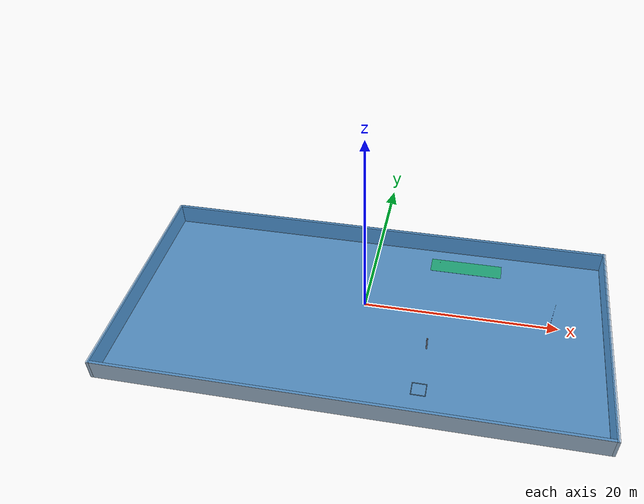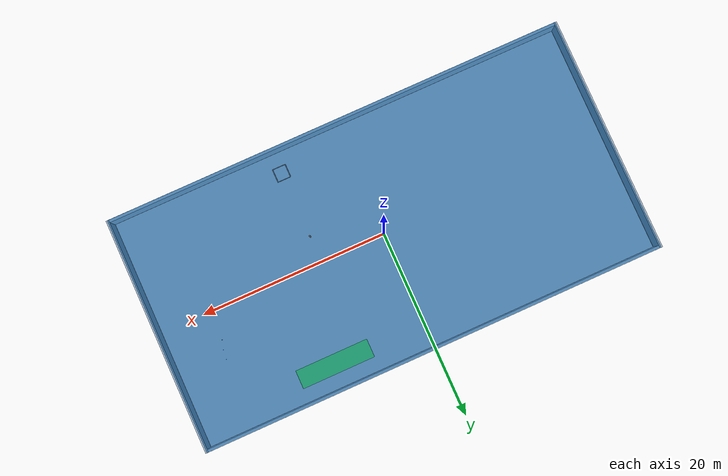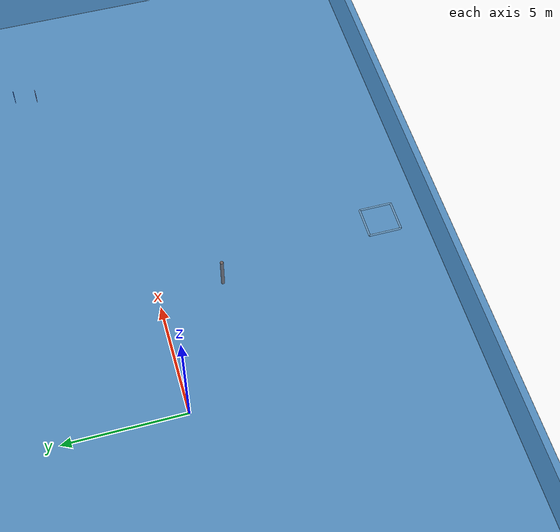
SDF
<sdf version="1.8">
 <world name="pool_world">
  <plugin filename="gz-sim-physics-system" name="gz::sim::systems::Physics"/>
  <plugin filename="gz-sim-user-commands-system" name="gz::sim::systems::UserCommands"/>
  <plugin filename="gz-sim-scene-broadcaster-system" name="gz::sim::systems::SceneBroadcaster"/>
  <plugin filename="gz-sim-imu-system" name="gz::sim::systems::Imu"/>
  <plugin filename="gz-sim-sensors-system" name="gz::sim::systems::Sensors">
   <render_engine>ogre2</render_engine>
  </plugin>
  <gravity>0 0 -9.81</gravity>
  <magnetic_field>6e-6 2e-5 -4e-5</magnetic_field>
  <atmosphere type="adiabatic"/>
  <scene><ambient>0.4 0.4 0.45 1</ambient><background>0.85 0.9 1 1</background><shadows>true</shadows></scene>
  <physics name="dart" type="dart">
   <max_step_size>0.001</max_step_size>
   <real_time_factor>1.0</real_time_factor>
   <real_time_update_rate>1000</real_time_update_rate>
  </physics>
  <include><uri>https://fuel.gazebosim.org/1.0/OpenRobotics/models/Sun</uri></include>
  <model name="pool_structure">
   <static>true</static>
   <pose>0 0 -2.2 0 0 0</pose>
   <include><uri>model://pool_ground25</uri></include>
   <link name="wall_x_pos">
    <pose>25.15 0 1.1 0 0 0</pose>
    <collision name="col"><geometry><box><size>0.3 25.6 2.2</size></box></geometry></collision>
    <visual name="vis">
     <geometry><box><size>0.3 25.6 2.2</size></box></geometry>
     <material>
      <ambient>0.7 0.8 0.9 1</ambient>
      <diffuse>0.7 0.8 0.9 1</diffuse>
      <specular>0.3 0.3 0.3 1</specular>
      <emissive>0 0 0 1</emissive>
     </material>
    </visual>
   </link>
   <link name="wall_x_neg">
    <pose>-25.15 0 1.1 0 0 0</pose>
    <collision name="col"><geometry><box><size>0.3 25.6 2.2</size></box></geometry></collision>
    <visual name="vis">
     <geometry><box><size>0.3 25.6 2.2</size></box></geometry>
     <material>
      <ambient>0.7 0.8 0.9 1</ambient>
      <diffuse>0.7 0.8 0.9 1</diffuse>
      <specular>0.3 0.3 0.3 1</specular>
      <emissive>0 0 0 1</emissive>
     </material>
    </visual>
   </link>
   <link name="wall_y_pos">
    <pose>0 12.65 1.1 0 0 0</pose>
    <collision name="col"><geometry><box><size>50 0.3 2.2</size></box></geometry></collision>
    <visual name="vis">
     <geometry><box><size>50 0.3 2.2</size></box></geometry>
     <material>
      <ambient>0.7 0.8 0.9 1</ambient>
      <diffuse>0.7 0.8 0.9 1</diffuse>
      <specular>0.3 0.3 0.3 1</specular>
      <emissive>0 0 0 1</emissive>
     </material>
    </visual>
   </link>
   <link name="wall_y_neg">
    <pose>0 -12.65 1.1 0 0 0</pose>
    <collision name="col"><geometry><box><size>50 0.3 2.2</size></box></geometry></collision>
    <visual name="vis">
     <geometry><box><size>50 0.3 2.2</size></box></geometry>
     <material>
      <ambient>0.7 0.8 0.9 1</ambient>
      <diffuse>0.7 0.8 0.9 1</diffuse>
      <specular>0.3 0.3 0.3 1</specular>
      <emissive>0 0 0 1</emissive>
     </material>
    </visual>
   </link>
  </model>
  <model name="water_surface">
   <static>true</static>
   <link name="surface">
    <visual name="visual">
     <geometry><plane><normal>0 0 1</normal><size>50.3 25.6</size></plane></geometry>
     <material>
      <ambient>0.1 0.35 0.55 0.6</ambient>
      <diffuse>0.1 0.4 0.65 0.6</diffuse>
      <specular>0.8 0.9 1 0.6</specular>
      <emissive>0 0 0 1</emissive>
     </material>
     <transparency>0.4</transparency>
    </visual>
   </link>
  </model>
  <plugin filename="gz-sim-buoyancy-system" name="gz::sim::systems::Buoyancy">
   <graded_buoyancy>
    <default_density>1000</default_density>
    <density_change><above_depth>0</above_depth><density>1</density></density_change>
   </graded_buoyancy>
  </plugin>
  <include><uri>model://starting_zone</uri><pose>7 -10 -0.2 0 0 0</pose><static>1</static></include>
  <include>
   <uri>model://orange_flare</uri>
   <plugin filename="gz-sim-label-system" name="gz::sim::systems::Label"><label>3</label></plugin>
   <pose>7 -3 -2.2 0 0 0</pose>
   <static>1</static>
  </include>
  <include>
   <uri>model://green_mat</uri>
   <plugin filename="gz-sim-label-system" name="gz::sim::systems::Label"><label>10</label></plugin>
   <pose>10 10 -2.2 0 0 0</pose>
   <static>1</static>
  </include>
  <include>
   <uri>model://golf_ball</uri>
   <plugin filename="gz-sim-label-system" name="gz::sim::systems::Label"><label>9</label></plugin>
   <pose>7 10 -2.0 0 0 0</pose>
   <static>1</static>
  </include>
  <include>
   <uri>model://yellow_flare</uri>
   <plugin filename="gz-sim-label-system" name="gz::sim::systems::Label"><label>5</label></plugin>
   <pose>20 5 -2.2 0 0 0</pose>
   <static>1</static>
  </include>
  <include>
   <uri>model://blue_flare</uri>
   <plugin filename="gz-sim-label-system" name="gz::sim::systems::Label"><label>6</label></plugin>
   <pose>19.8 4 -2.2 0 0 0</pose>
   <static>1</static>
  </include>
  <include>
   <uri>model://red_flare</uri>
   <plugin filename="gz-sim-label-system" name="gz::sim::systems::Label"><label>4</label></plugin>
   <pose>19.6 3 -2.2 0 0 0</pose>
   <static>1</static>
  </include>
 </world>
</sdf>

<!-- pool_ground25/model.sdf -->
<sdf version="1.7">
  <model name="pool_ground25">
    <static>true</static>

    <link name="pool_floor">
      <collision name="collision">
        <geometry>
          <plane>
            <normal>0 0 1</normal>
            <size>50 25</size>
          </plane>
        </geometry>
        <surface>
          <contact>
            <collide_bitmask>0x01</collide_bitmask>
          </contact>
          <friction>
            <ode>
              <mu>0.8</mu>
              <mu2>0.8</mu2>
            </ode>
          </friction>
        </surface>
      </collision>

      <visual name="visual">
        <geometry>
          <plane>
            <normal>0 0 1</normal>
            <size>50 25</size>
          </plane>
        </geometry>
        <material>
          <!-- Direct texture approach -->
          <ambient>0.7 0.8 0.9 1</ambient>
          <diffuse>0.7 0.8 0.9 1</diffuse>
          <specular>0.3 0.3 0.3 1</specular>
          <emissive>0 0 0 1</emissive>
          <pbr>
            <metal>
              <albedo_map>model://pool_ground25/materials/textures/pool_lanes.png</albedo_map>
            </metal>
          </pbr>
        </material>
      </visual>
    </link>
  </model>
</sdf>

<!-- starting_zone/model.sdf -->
<sdf version="1.7">

  <!-- Starting zone (four white posts forming a 1.4 m x 1.4 m square) -->
  <model name="starting_zone">
    <pose>0 0 0 0 0 0</pose>
    <static>1</static>

    <link name="post_front_left">
      <pose>-0.7 0 0 1.5708 0 0</pose>
      <visual name="visual">
        <geometry>
          <cylinder>
            <radius>0.04</radius>
            <length>1.4</length>
          </cylinder>
        </geometry>
        <material>
          <ambient>1 1 1 1</ambient>
          <diffuse>1 1 1 1</diffuse>
        </material>
      </visual>
    </link>

    <link name="post_front_right">
      <pose>0.7 0 0 1.5708 0 0</pose>
      <visual name="visual">
        <geometry>
          <cylinder>
            <radius>0.04</radius>
            <length>1.4</length>
          </cylinder>
        </geometry>
        <material>
          <ambient>1 1 1 1</ambient>
          <diffuse>1 1 1 1</diffuse>
        </material>
      </visual>
    </link>

    <link name="post_back_left">
      <pose>0 -0.7 0 0 1.5708 0</pose>
      <visual name="visual">
        <geometry>
          <cylinder>
            <radius>0.04</radius>
            <length>1.4</length>
          </cylinder>
        </geometry>
        <material>
          <ambient>1 1 1 1</ambient>
          <diffuse>1 1 1 1</diffuse>
        </material>
      </visual>
    </link>

    <link name="post_back_right">
      <pose>0 0.7 0 0 1.5708 0</pose>
      <visual name="visual">
        <geometry>
          <cylinder>
            <radius>0.04</radius>
            <length>1.4</length>
          </cylinder>
        </geometry>
        <material>
          <ambient>1 1 1 1</ambient>
          <diffuse>1 1 1 1</diffuse>
        </material>
      </visual>
    </link>
  </model>

</sdf>

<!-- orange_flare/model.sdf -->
<sdf version='1.7'>
  <model name='orange_flare'>
    <link name='link_1'>
      <inertial>
        <mass>0.0123911</mass>
        <inertia>
          <ixx>0.00104219</ixx>
          <ixy>0</ixy>
          <ixz>0</ixz>
          <iyy>0.00104219</iyy>
          <iyz>0</iyz>
          <izz>1.919e-05</izz>
        </inertia>
        <pose>0 0 0 0 -0 0</pose>
      </inertial>
      <pose>0 0 0.75 0 -0 0</pose>
      <gravity>1</gravity>
      <self_collide>0</self_collide>
      <kinematic>0</kinematic>
      <enable_wind>0</enable_wind>
      <visual name='visual'>
        <pose>0 0 0 0 -0 0</pose>
        <geometry>
          <cylinder>
            <radius>0.075</radius>
            <length>1.5</length>
          </cylinder>
        </geometry>
        <material>
          <ambient>1 0.4 0 1</ambient>
          <diffuse>1 0.4 0 1</diffuse>
          <specular>0.01 0.01 0.01 1</specular>
          <emissive>0 0 0 1</emissive>
        </material>
        <transparency>0</transparency>
        <cast_shadows>1</cast_shadows>
      </visual>
      <collision name='collision'>
        <laser_retro>0</laser_retro>
        <max_contacts>10</max_contacts>
        <pose>0 0 0 0 -0 0</pose>
        <geometry>
          <cylinder>
            <radius>0.075</radius>
            <length>1.5</length>
          </cylinder>
        </geometry>
        <surface>
          <friction>
            <ode>
              <mu>1</mu>
              <mu2>1</mu2>
              <fdir1>0 0 0</fdir1>
              <slip1>0</slip1>
              <slip2>0</slip2>
            </ode>
            <torsional>
              <coefficient>1</coefficient>
              <patch_radius>0</patch_radius>
              <surface_radius>0</surface_radius>
              <use_patch_radius>1</use_patch_radius>
              <ode>
                <slip>0</slip>
              </ode>
            </torsional>
          </friction>
          <bounce>
            <restitution_coefficient>0</restitution_coefficient>
            <threshold>1e+06</threshold>
          </bounce>
          <contact>
            <collide_without_contact>0</collide_without_contact>
            <collide_without_contact_bitmask>1</collide_without_contact_bitmask>
            <collide_bitmask>1</collide_bitmask>
            <ode>
              <soft_cfm>0</soft_cfm>
              <soft_erp>0.2</soft_erp>
              <kp>1e+13</kp>
              <kd>1</kd>
              <max_vel>0.01</max_vel>
              <min_depth>0</min_depth>
            </ode>
            <bullet>
              <split_impulse>1</split_impulse>
              <split_impulse_penetration_threshold>-0.01</split_impulse_penetration_threshold>
              <soft_cfm>0</soft_cfm>
              <soft_erp>0.2</soft_erp>
              <kp>1e+13</kp>
              <kd>1</kd>
            </bullet>
          </contact>
        </surface>
      </collision>
    </link>
    <static>1</static>
    <allow_auto_disable>1</allow_auto_disable>
  </model>
</sdf>

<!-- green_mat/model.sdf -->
<sdf version='1.7'>
  <model name='green_mat'>
    <link name='link_1'>
      <inertial>
        <mass>1</mass>
        <inertia>
          <ixx>0.166667</ixx>
          <ixy>0</ixy>
          <ixz>0</ixz>
          <iyy>0.166667</iyy>
          <iyz>0</iyz>
          <izz>0.166667</izz>
        </inertia>
        <pose>0 0 0 0 -0 0</pose>
      </inertial>
      <pose>0 0 0 0 -0 0</pose>
      <gravity>1</gravity>
      <self_collide>0</self_collide>
      <kinematic>0</kinematic>
      <enable_wind>0</enable_wind>
      <visual name='visual'>
        <pose>0 0 0 0 -0 0</pose>
        <geometry>
          <box>
            <size>8 2 0.01</size>
          </box>
        </geometry>
        <material>
          <ambient>0.1 0.5 0.1 1</ambient>
          <diffuse>0.2 1 0.2 1</diffuse>
          <specular>0.01 0.01 0.01 1</specular>
          <emissive>0 0 0 1</emissive>
        </material>
        <transparency>0</transparency>
        <cast_shadows>1</cast_shadows>
      </visual>
      <collision name='collision'>
        <laser_retro>0</laser_retro>
        <max_contacts>10</max_contacts>
        <pose>0 0 0 0 -0 0</pose>
        <geometry>
          <box>
            <size>8 2 0.01</size>
          </box>
        </geometry>
        <surface>
          <friction>
            <ode>
              <mu>1</mu>
              <mu2>1</mu2>
              <fdir1>0 0 0</fdir1>
              <slip1>0</slip1>
              <slip2>0</slip2>
            </ode>
            <torsional>
              <coefficient>1</coefficient>
              <patch_radius>0</patch_radius>
              <surface_radius>0</surface_radius>
              <use_patch_radius>1</use_patch_radius>
              <ode>
                <slip>0</slip>
              </ode>
            </torsional>
          </friction>
          <bounce>
            <restitution_coefficient>0</restitution_coefficient>
            <threshold>1e+06</threshold>
          </bounce>
          <contact>
            <collide_without_contact>0</collide_without_contact>
            <collide_without_contact_bitmask>1</collide_without_contact_bitmask>
            <collide_bitmask>1</collide_bitmask>
            <ode>
              <soft_cfm>0</soft_cfm>
              <soft_erp>0.2</soft_erp>
              <kp>1e+13</kp>
              <kd>1</kd>
              <max_vel>0.01</max_vel>
              <min_depth>0</min_depth>
            </ode>
            <bullet>
              <split_impulse>1</split_impulse>
              <split_impulse_penetration_threshold>-0.01</split_impulse_penetration_threshold>
              <soft_cfm>0</soft_cfm>
              <soft_erp>0.2</soft_erp>
              <kp>1e+13</kp>
              <kd>1</kd>
            </bullet>
          </contact>
        </surface>
      </collision>
    </link>
    <static>1</static>
    <allow_auto_disable>1</allow_auto_disable>
  </model>
</sdf>

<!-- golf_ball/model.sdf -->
<sdf version='1.7'>
  <model name='golf_ball'>
    <link name='link_0'>
      <inertial>
        <mass>0.0460639</mass>
        <inertia>
          <ixx>8.4e-06</ixx>
          <ixy>0</ixy>
          <ixz>0</ixz>
          <iyy>8.4e-06</iyy>
          <iyz>0</iyz>
          <izz>8.4e-06</izz>
        </inertia>
        <pose>0 0 0 0 -0 0</pose>
      </inertial>
      <pose>0 0 0.3 0 -0 0</pose>
      <gravity>1</gravity>
      <self_collide>0</self_collide>
      <kinematic>0</kinematic>
      <enable_wind>0</enable_wind>
      <visual name='visual'>
        <pose>0 0 0 0 -0 0</pose>
        <geometry>
          <sphere>
            <radius>0.02135</radius>
          </sphere>
        </geometry>
        <material>
          <lighting>1</lighting>
          <script>
            <uri>file://media/materials/scripts/gazebo.material</uri>
            <name>Gazebo/Grey</name>
          </script>
          <shader type='pixel'>
            <normal_map>__default__</normal_map>
          </shader>
          <ambient>1 1 1 1</ambient>
          <diffuse>1 1 1 1</diffuse>
          <specular>1 1 1 1</specular>
          <emissive>0 0 0 1</emissive>
        </material>
        <transparency>0</transparency>
        <cast_shadows>1</cast_shadows>
      </visual>
      <collision name='collision'>
        <laser_retro>0</laser_retro>
        <max_contacts>10</max_contacts>
        <pose>0 0 0 0 -0 0</pose>
        <geometry>
          <sphere>
            <radius>0.02135</radius>
          </sphere>
        </geometry>
        <surface>
          <friction>
            <ode>
              <mu>1</mu>
              <mu2>1</mu2>
              <fdir1>0 0 0</fdir1>
              <slip1>0</slip1>
              <slip2>0</slip2>
            </ode>
            <torsional>
              <coefficient>1</coefficient>
              <patch_radius>0</patch_radius>
              <surface_radius>0</surface_radius>
              <use_patch_radius>1</use_patch_radius>
              <ode>
                <slip>0</slip>
              </ode>
            </torsional>
          </friction>
          <bounce>
            <restitution_coefficient>0</restitution_coefficient>
            <threshold>1e+06</threshold>
          </bounce>
          <contact>
            <collide_without_contact>0</collide_without_contact>
            <collide_without_contact_bitmask>1</collide_without_contact_bitmask>
            <collide_bitmask>1</collide_bitmask>
            <ode>
              <soft_cfm>0</soft_cfm>
              <soft_erp>0.2</soft_erp>
              <kp>1e+13</kp>
              <kd>1</kd>
              <max_vel>0.01</max_vel>
              <min_depth>0</min_depth>
            </ode>
            <bullet>
              <split_impulse>1</split_impulse>
              <split_impulse_penetration_threshold>-0.01</split_impulse_penetration_threshold>
              <soft_cfm>0</soft_cfm>
              <soft_erp>0.2</soft_erp>
              <kp>1e+13</kp>
              <kd>1</kd>
            </bullet>
          </contact>
        </surface>
      </collision>
    </link>
    <static>0</static>
    <allow_auto_disable>1</allow_auto_disable>

    <plugin name="buoyancy" filename="libBuoyancyPlugin.so">
      <fluid_density>1000</fluid_density>
    </plugin>
  </model>
</sdf>

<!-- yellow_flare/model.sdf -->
<sdf version='1.7'>
  <model name='yellow_flare'>
    <link name='link_0'>
      <inertial>
        <mass>1</mass>
        <inertia>
          <ixx>0.145833</ixx>
          <ixy>0</ixy>
          <ixz>0</ixz>
          <iyy>0.145833</iyy>
          <iyz>0</iyz>
          <izz>0.125</izz>
        </inertia>
        <pose>0 0 0 0 -0 0</pose>
      </inertial>
      <pose>0 0 0.4 0 -0 0</pose>
      <gravity>1</gravity>
      <self_collide>0</self_collide>
      <kinematic>0</kinematic>
      <enable_wind>0</enable_wind>
      <visual name='visual'>
        <pose>0 0 0 0 -0 0</pose>
        <geometry>
          <cylinder>
            <radius>0.01</radius>
            <length>0.8</length>
          </cylinder>
        </geometry>
        <material>
          <ambient>1 1 0.3 1</ambient>
          <diffuse>1 1 0.7 1</diffuse>
          <specular>0.01 0.01 0.01 1</specular>
          <emissive>0 0 0 1</emissive>
        </material>
        <transparency>0</transparency>
        <cast_shadows>1</cast_shadows>
      </visual>
      <collision name='collision'>
        <laser_retro>0</laser_retro>
        <max_contacts>10</max_contacts>
        <pose>0 0 0 0 -0 0</pose>
        <geometry>
          <cylinder>
            <radius>0.01</radius>
            <length>0.8</length>
          </cylinder>
        </geometry>
        <surface>
          <friction>
            <ode>
              <mu>1</mu>
              <mu2>1</mu2>
              <fdir1>0 0 0</fdir1>
              <slip1>0</slip1>
              <slip2>0</slip2>
            </ode>
            <torsional>
              <coefficient>1</coefficient>
              <patch_radius>0</patch_radius>
              <surface_radius>0</surface_radius>
              <use_patch_radius>1</use_patch_radius>
              <ode>
                <slip>0</slip>
              </ode>
            </torsional>
          </friction>
          <bounce>
            <restitution_coefficient>0</restitution_coefficient>
            <threshold>1e+06</threshold>
          </bounce>
          <contact>
            <collide_without_contact>0</collide_without_contact>
            <collide_without_contact_bitmask>1</collide_without_contact_bitmask>
            <collide_bitmask>1</collide_bitmask>
            <ode>
              <soft_cfm>0</soft_cfm>
              <soft_erp>0.2</soft_erp>
              <kp>1e+13</kp>
              <kd>1</kd>
              <max_vel>0.01</max_vel>
              <min_depth>0</min_depth>
            </ode>
            <bullet>
              <split_impulse>1</split_impulse>
              <split_impulse_penetration_threshold>-0.01</split_impulse_penetration_threshold>
              <soft_cfm>0</soft_cfm>
              <soft_erp>0.2</soft_erp>
              <kp>1e+13</kp>
              <kd>1</kd>
            </bullet>
          </contact>
        </surface>
      </collision>
    </link>
    <static>0</static>
    <allow_auto_disable>1</allow_auto_disable>
  </model>
</sdf>

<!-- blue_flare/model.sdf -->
<sdf version='1.7'>
  <model name='blue_flare'>
    <link name='link_0'>
      <inertial>
        <mass>1</mass>
        <inertia>
          <ixx>0.145833</ixx>
          <ixy>0</ixy>
          <ixz>0</ixz>
          <iyy>0.145833</iyy>
          <iyz>0</iyz>
          <izz>0.125</izz>
        </inertia>
        <pose>0 0 0 0 -0 0</pose>
      </inertial>
      <pose>0 0 0.4 0 -0 0</pose>
      <gravity>1</gravity>
      <self_collide>0</self_collide>
      <kinematic>0</kinematic>
      <enable_wind>0</enable_wind>
      <visual name='visual'>
        <pose>0 0 0 0 -0 0</pose>
        <geometry>
          <cylinder>
            <radius>0.01</radius>
            <length>0.8</length>
          </cylinder>
        </geometry>
        <material>
          <ambient>0 0 1 1</ambient>
          <diffuse>0 0 1 1</diffuse>
          <specular>0.01 0.01 0.01 1</specular>
          <emissive>0 0 0 1</emissive>
        </material>
        <transparency>0</transparency>
        <cast_shadows>1</cast_shadows>
      </visual>
      <collision name='collision'>
        <laser_retro>0</laser_retro>
        <max_contacts>10</max_contacts>
        <pose>0 0 0 0 -0 0</pose>
        <geometry>
          <cylinder>
            <radius>0.01</radius>
            <length>0.8</length>
          </cylinder>
        </geometry>
        <surface>
          <friction>
            <ode>
              <mu>1</mu>
              <mu2>1</mu2>
              <fdir1>0 0 0</fdir1>
              <slip1>0</slip1>
              <slip2>0</slip2>
            </ode>
            <torsional>
              <coefficient>1</coefficient>
              <patch_radius>0</patch_radius>
              <surface_radius>0</surface_radius>
              <use_patch_radius>1</use_patch_radius>
              <ode>
                <slip>0</slip>
              </ode>
            </torsional>
          </friction>
          <bounce>
            <restitution_coefficient>0</restitution_coefficient>
            <threshold>1e+06</threshold>
          </bounce>
          <contact>
            <collide_without_contact>0</collide_without_contact>
            <collide_without_contact_bitmask>1</collide_without_contact_bitmask>
            <collide_bitmask>1</collide_bitmask>
            <ode>
              <soft_cfm>0</soft_cfm>
              <soft_erp>0.2</soft_erp>
              <kp>1e+13</kp>
              <kd>1</kd>
              <max_vel>0.01</max_vel>
              <min_depth>0</min_depth>
            </ode>
            <bullet>
              <split_impulse>1</split_impulse>
              <split_impulse_penetration_threshold>-0.01</split_impulse_penetration_threshold>
              <soft_cfm>0</soft_cfm>
              <soft_erp>0.2</soft_erp>
              <kp>1e+13</kp>
              <kd>1</kd>
            </bullet>
          </contact>
        </surface>
      </collision>
    </link>
    <static>0</static>
    <allow_auto_disable>1</allow_auto_disable>
  </model>
</sdf>

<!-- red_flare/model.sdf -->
<sdf version='1.7'>
  <model name='red_flare'>
    <link name='link_0'>
      <inertial>
        <mass>1</mass>
        <inertia>
          <ixx>0.145833</ixx>
          <ixy>0</ixy>
          <ixz>0</ixz>
          <iyy>0.145833</iyy>
          <iyz>0</iyz>
          <izz>0.125</izz>
        </inertia>
        <pose>0 0 0 0 -0 0</pose>
      </inertial>
      <pose>0 0 0.4 0 -0 0</pose>
      <gravity>1</gravity>
      <self_collide>0</self_collide>
      <kinematic>0</kinematic>
      <enable_wind>0</enable_wind>
      <visual name='visual'>
        <pose>0 0 0 0 -0 0</pose>
        <geometry>
          <cylinder>
            <radius>0.01</radius>
            <length>0.8</length>
          </cylinder>
        </geometry>
        <material>
          <ambient>1 0 0 1</ambient>
          <diffuse>1 0 0 1</diffuse>
          <specular>0.01 0.01 0.01 1</specular>
          <emissive>0 0 0 1</emissive>
        </material>
        <transparency>0</transparency>
        <cast_shadows>1</cast_shadows>
      </visual>
      <collision name='collision'>
        <laser_retro>0</laser_retro>
        <max_contacts>10</max_contacts>
        <pose>0 0 0 0 -0 0</pose>
        <geometry>
          <cylinder>
            <radius>0.01</radius>
            <length>0.8</length>
          </cylinder>
        </geometry>
        <surface>
          <friction>
            <ode>
              <mu>1</mu>
              <mu2>1</mu2>
              <fdir1>0 0 0</fdir1>
              <slip1>0</slip1>
              <slip2>0</slip2>
            </ode>
            <torsional>
              <coefficient>1</coefficient>
              <patch_radius>0</patch_radius>
              <surface_radius>0</surface_radius>
              <use_patch_radius>1</use_patch_radius>
              <ode>
                <slip>0</slip>
              </ode>
            </torsional>
          </friction>
          <bounce>
            <restitution_coefficient>0</restitution_coefficient>
            <threshold>1e+06</threshold>
          </bounce>
          <contact>
            <collide_without_contact>0</collide_without_contact>
            <collide_without_contact_bitmask>1</collide_without_contact_bitmask>
            <collide_bitmask>1</collide_bitmask>
            <ode>
              <soft_cfm>0</soft_cfm>
              <soft_erp>0.2</soft_erp>
              <kp>1e+13</kp>
              <kd>1</kd>
              <max_vel>0.01</max_vel>
              <min_depth>0</min_depth>
            </ode>
            <bullet>
              <split_impulse>1</split_impulse>
              <split_impulse_penetration_threshold>-0.01</split_impulse_penetration_threshold>
              <soft_cfm>0</soft_cfm>
              <soft_erp>0.2</soft_erp>
              <kp>1e+13</kp>
              <kd>1</kd>
            </bullet>
          </contact>
        </surface>
      </collision>
    </link>
    <static>0</static>
    <allow_auto_disable>1</allow_auto_disable>
  </model>
</sdf>
